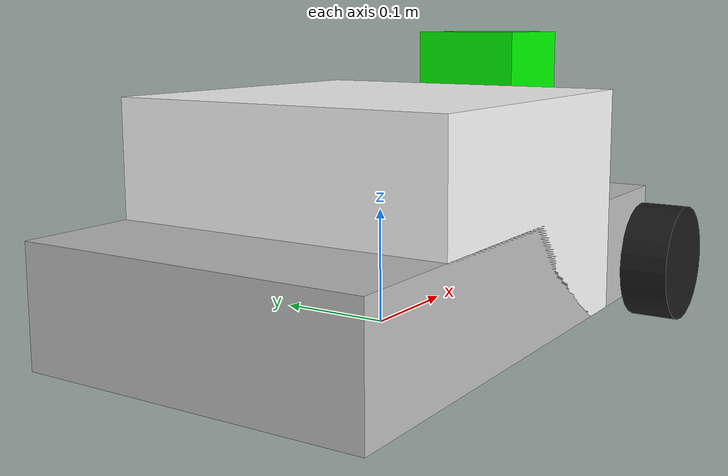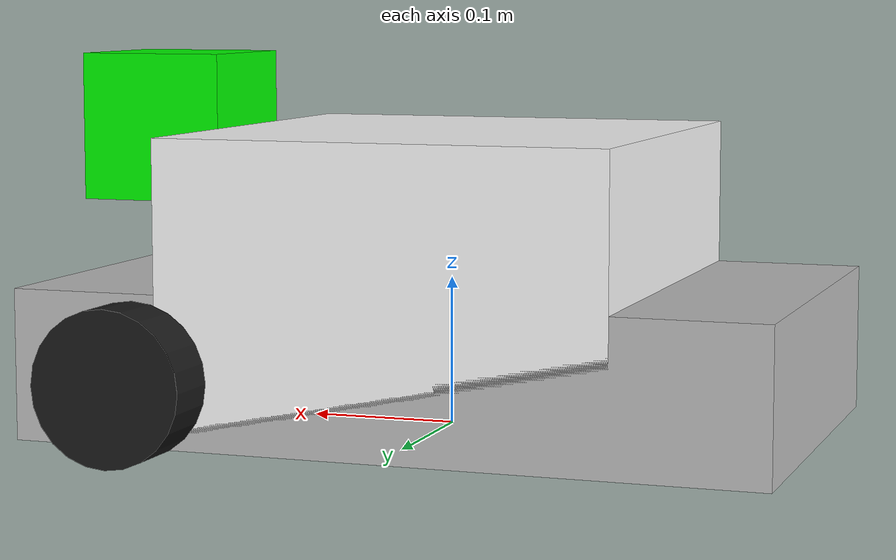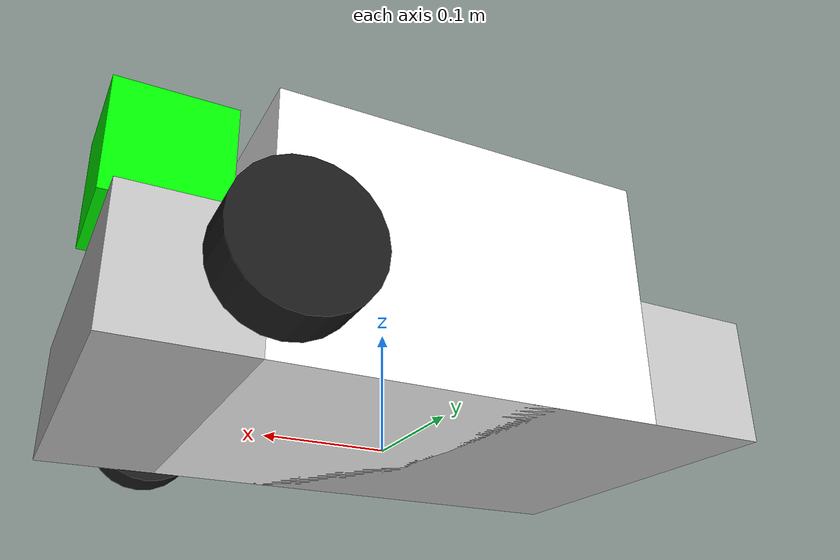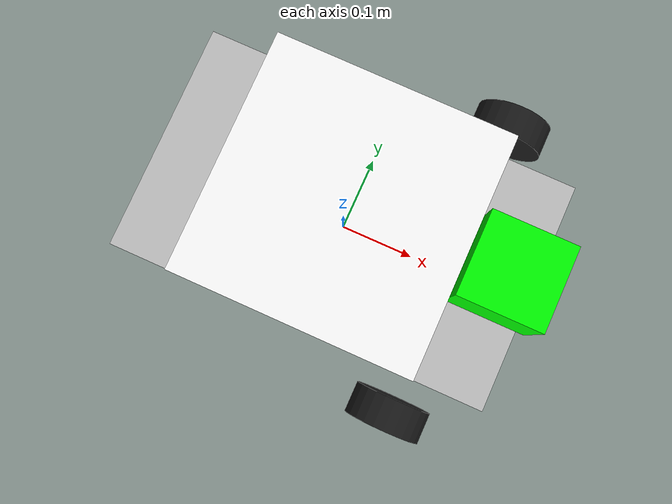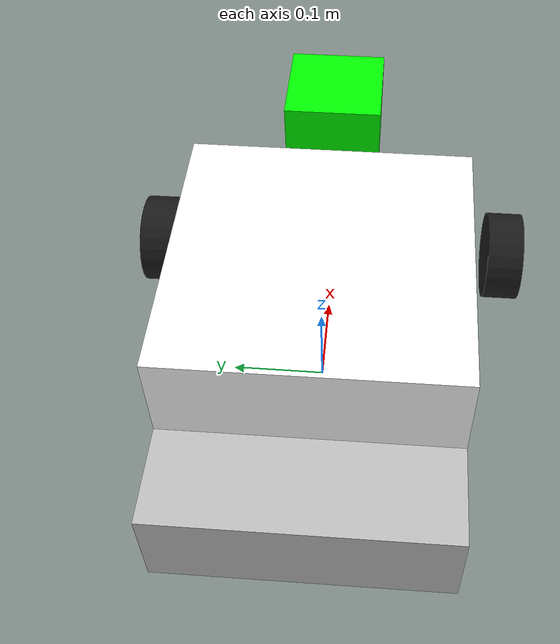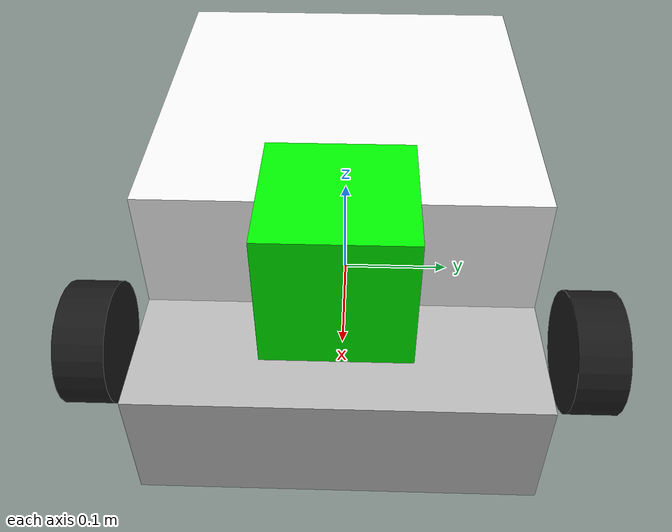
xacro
<?xml version="1.0"?>
<robot xmlns:xacro="http://www.ros.org/wiki/xacro" name="medical_support_robot">
  <xacro:include filename="../base_differential_drive.xacro" />
  <xacro:macro name="medical_support_robot">
    <xacro:base_differential_drive prefix="" />
    <!-- Material Definitions -->
    <material name="white">
      <color rgba="1.0 1.0 1.0 1.0" />
    </material>
    <material name="green">
      <color rgba="0.0 1.0 0.0 1.0" />
    </material>
    <!-- Specialized links -->
    <link name="supply_compartment_link">
      <inertial><origin xyz="0 0 0" rpy="0 0 0" /><mass value="3.0" /><inertia ixx="0.01" ixy="0" ixz="0" iyy="0.01" iyz="0" izz="0.01" /></inertial>
      <visual><origin xyz="0 0 0" rpy="0 0 0" /><geometry><box size="0.3 0.3 0.2" /></geometry><material name="white" /></visual>
      <collision><origin xyz="0 0 0" rpy="0 0 0" /><geometry><box size="0.3 0.3 0.2" /></geometry></collision>
    </link>
    <link name="vital_sensors_link">
      <inertial><origin xyz="0 0 0" rpy="0 0 0" /><mass value="0.5" /><inertia ixx="0.001" ixy="0" ixz="0" iyy="0.001" iyz="0" izz="0.001" /></inertial>
      <visual><origin xyz="0 0 0" rpy="0 0 0" /><geometry><box size="0.1 0.1 0.1" /></geometry><material name="green" /></visual>
      <collision><origin xyz="0 0 0" rpy="0 0 0" /><geometry><box size="0.1 0.1 0.1" /></geometry></collision>
    </link>
    <!-- Specialized joints -->
    <joint name="supply_compartment_joint" type="fixed">
      <parent link="base_link" />
      <child link="supply_compartment_link" />
      <origin xyz="0 0 0.1" rpy="0 0 0" />
    </joint>
    <joint name="vital_sensors_joint" type="fixed">
      <parent link="base_link" />
      <child link="vital_sensors_link" />
      <origin xyz="0.2 0 0.2" rpy="0 0 0" />
    </joint>
    <!-- Gazebo plugins -->
    <gazebo>
      <plugin filename="ign-gazebo-camera-system" name="ignition::gazebo::systems::Camera">
        <topic>/medical_support_robot/vital_camera</topic>
        <camera><horizontal_fov>1.047</horizontal_fov><image><width>320</width><height>240</height></image></camera>
        <link>vital_sensors_link</link>
      </plugin>
    </gazebo>
  </xacro:macro>
  <xacro:medical_support_robot />
</robot>

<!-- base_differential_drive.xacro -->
<robot xmlns:xacro="http://www.ros.org/wiki/xacro">
  <xacro:macro name="base_differential_drive" params="prefix">
    <!-- Robot Properties -->
    <xacro:property name="base_length" value="0.5" />
    <xacro:property name="base_width" value="0.3" />
    <xacro:property name="base_height" value="0.1" />
    <xacro:property name="wheel_radius" value="0.05" />
    <xacro:property name="wheel_width" value="0.04" />
    <xacro:property name="wheel_ygap" value="0.2" />
    <xacro:property name="wheel_xoff" value="0.15" />
    <xacro:property name="wheel_zoff" value="0.05" />
    <xacro:property name="caster_radius" value="0.025" />
    <xacro:property name="caster_xoff" value="-0.15" />

    <!-- Base Link -->
    <link name="${prefix}base_link">
      <inertial>
        <origin xyz="0 0 ${base_height/2}" rpy="0 0 0" />
        <mass value="5.0" />
        <inertia ixx="0.1" ixy="0" ixz="0" iyy="0.1" iyz="0" izz="0.1" />
      </inertial>
      <visual>
        <origin xyz="0 0 ${base_height/2}" rpy="0 0 0" />
        <geometry>
          <box size="${base_length} ${base_width} ${base_height}" />
        </geometry>
        <material name="silver">
          <color rgba="0.75 0.75 0.75 1.0" />
        </material>
      </visual>
      <collision>
        <origin xyz="0 0 ${base_height/2}" rpy="0 0 0" />
        <geometry>
          <box size="${base_length} ${base_width} ${base_height}" />
        </geometry>
      </collision>
    </link>

    <!-- Left Wheel -->
    <link name="${prefix}left_wheel">
      <inertial>
        <origin xyz="0 0 0" rpy="${pi/2} 0 0" />
        <mass value="0.5" />
        <inertia ixx="0.001" ixy="0" ixz="0" iyy="0.001" iyz="0" izz="0.001" />
      </inertial>
      <visual>
        <origin xyz="0 0 0" rpy="${pi/2} 0 0" />
        <geometry>
          <cylinder radius="${wheel_radius}" length="${wheel_width}" />
        </geometry>
        <material name="black">
          <color rgba="0.1 0.1 0.1 1.0" />
        </material>
      </visual>
      <collision>
        <origin xyz="0 0 0" rpy="${pi/2} 0 0" />
        <geometry>
          <cylinder radius="${wheel_radius}" length="${wheel_width}" />
        </geometry>
      </collision>
    </link>

    <!-- Left Wheel Joint -->
    <joint name="${prefix}left_wheel_joint" type="continuous">
      <parent link="${prefix}base_link" />
      <child link="${prefix}left_wheel" />
      <origin xyz="${wheel_xoff} ${wheel_ygap} ${wheel_zoff}" rpy="0 0 0" />
      <axis xyz="0 1 0" />
      <dynamics damping="0.1" friction="0.1" />
    </joint>

    <!-- Right Wheel -->
    <link name="${prefix}right_wheel">
      <inertial>
        <origin xyz="0 0 0" rpy="${pi/2} 0 0" />
        <mass value="0.5" />
        <inertia ixx="0.001" ixy="0" ixz="0" iyy="0.001" iyz="0" izz="0.001" />
      </inertial>
      <visual>
        <origin xyz="0 0 0" rpy="${pi/2} 0 0" />
        <geometry>
          <cylinder radius="${wheel_radius}" length="${wheel_width}" />
        </geometry>
        <material name="black">
          <color rgba="0.1 0.1 0.1 1.0" />
        </material>
      </visual>
      <collision>
        <origin xyz="0 0 0" rpy="${pi/2} 0 0" />
        <geometry>
          <cylinder radius="${wheel_radius}" length="${wheel_width}" />
        </geometry>
      </collision>
    </link>

    <!-- Right Wheel Joint -->
    <joint name="${prefix}right_wheel_joint" type="continuous">
      <parent link="${prefix}base_link" />
      <child link="${prefix}right_wheel" />
      <origin xyz="${wheel_xoff} -${wheel_ygap} ${wheel_zoff}" rpy="0 0 0" />
      <axis xyz="0 1 0" />
      <dynamics damping="0.1" friction="0.1" />
    </joint>

    <!-- Caster Wheel -->
    <link name="${prefix}caster">
      <inertial>
        <origin xyz="0 0 0" rpy="0 0 0" />
        <mass value="0.1" />
        <inertia ixx="0.0001" ixy="0" ixz="0" iyy="0.0001" iyz="0" izz="0.0001" />
      </inertial>
      <visual>
        <origin xyz="0 0 0" rpy="0 0 0" />
        <geometry>
          <sphere radius="${caster_radius}" />
        </geometry>
        <material name="black">
          <color rgba="0.1 0.1 0.1 1.0" />
        </material>
      </visual>
      <collision>
        <origin xyz="0 0 0" rpy="0 0 0" />
        <geometry>
          <sphere radius="${caster_radius}" />
        </geometry>
      </collision>
    </link>

    <!-- Caster Joint -->
    <joint name="${prefix}caster_joint" type="fixed">
      <parent link="${prefix}base_link" />
      <child link="${prefix}caster" />
      <origin xyz="${caster_xoff} 0 ${caster_radius}" rpy="0 0 0" />
    </joint>

    <!-- Gazebo Differential Drive Plugin -->
    <gazebo>
      <plugin filename="ign-gazebo-diff-drive-system" name="ignition::gazebo::systems::DiffDrive">
        <left_joint>${prefix}left_wheel_joint</left_joint>
        <right_joint>${prefix}right_wheel_joint</right_joint>
        <wheel_separation>${2 * wheel_ygap}</wheel_separation>
        <wheel_radius>${wheel_radius}</wheel_radius>
        <odom_publish_frequency>10</odom_publish_frequency>
        <topic>/cmd_vel</topic>
        <frame_id>odom</frame_id>
        <child_frame_id>${prefix}base_link</child_frame_id>
      </plugin>
    </gazebo>
  </xacro:macro>
</robot>
